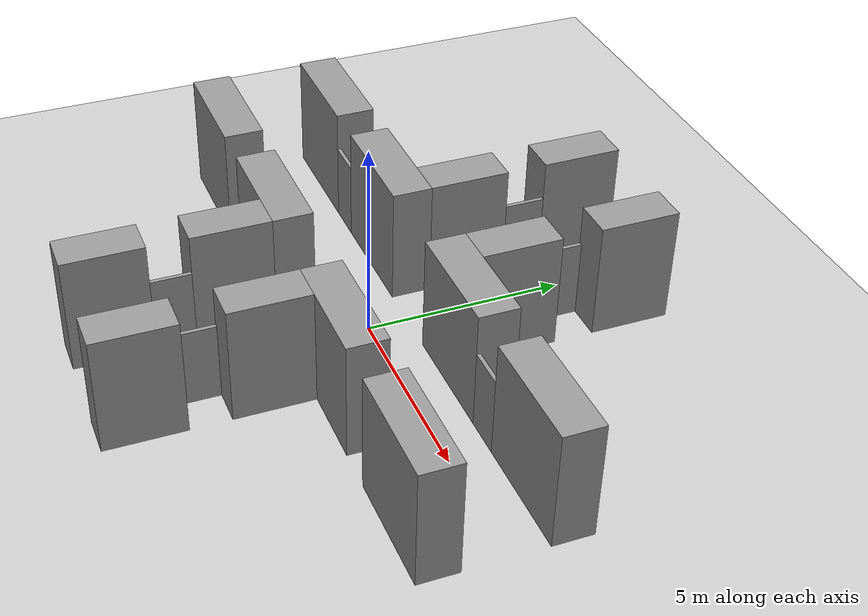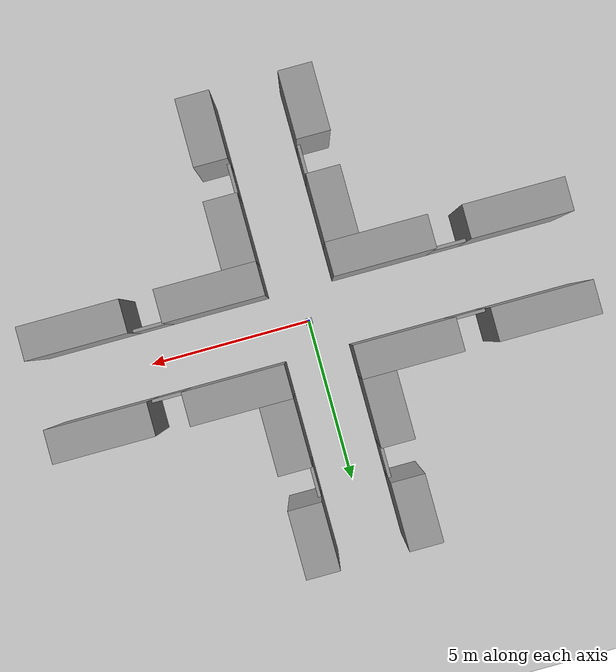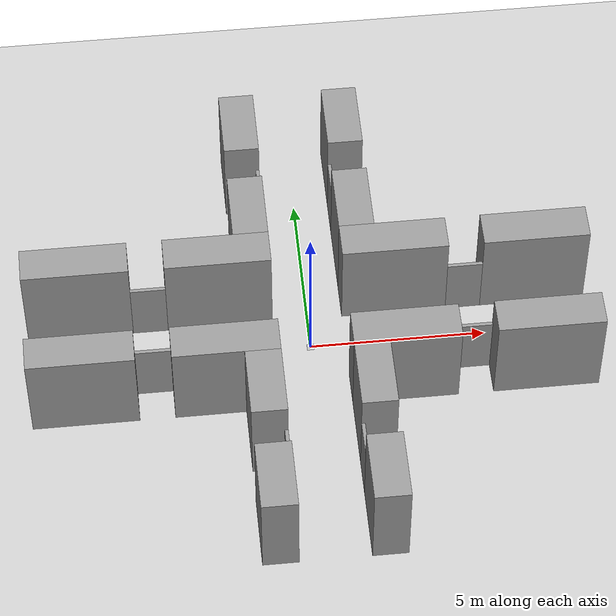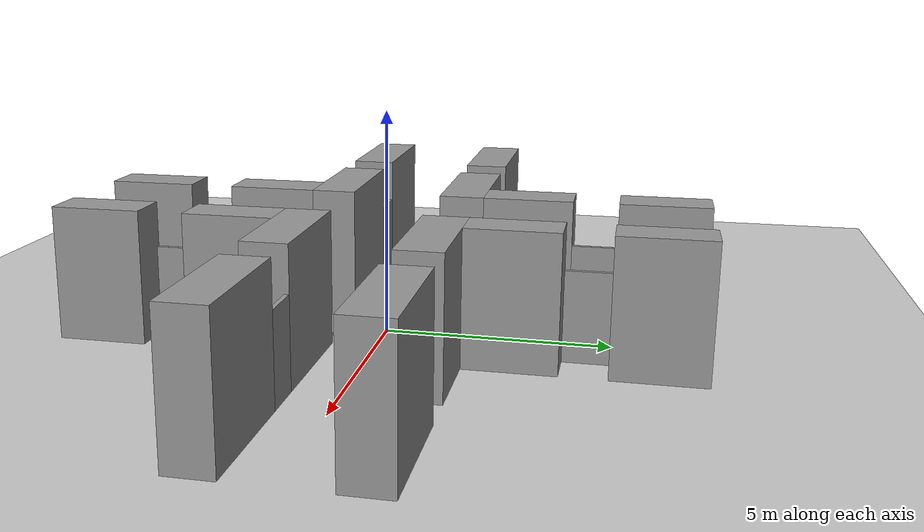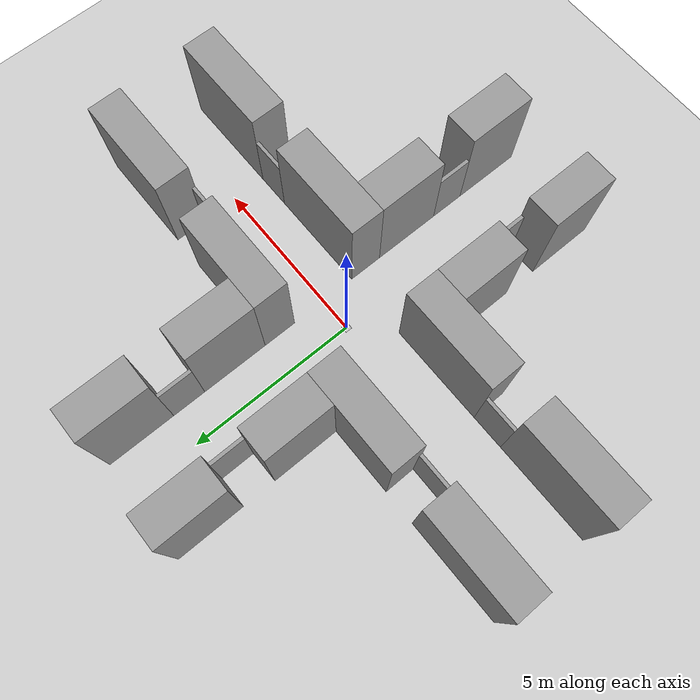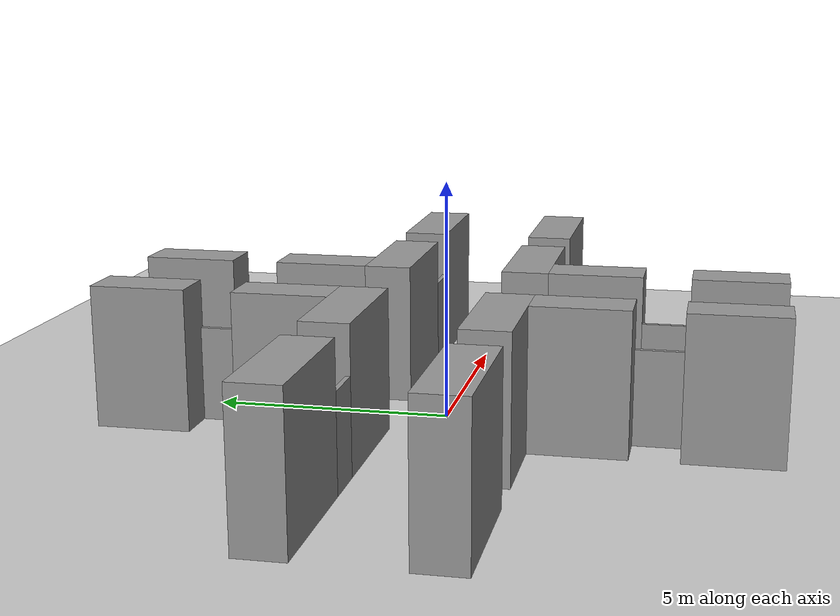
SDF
<sdf version="1.6">
 <world name="default">
  <light name="sun" type="directional">
   <pose>0 0 10 0 -0 0</pose>
   <diffuse>0.8 0.8 0.8 1</diffuse>
   <specular>0.2 0.2 0.2 1</specular>
   <attenuation>
    <range>1000</range>
    <constant>0.9</constant>
    <linear>0.01</linear>
    <quadratic>0.001</quadratic>
   </attenuation>
   <direction>-0.5 0.1 -0.9</direction>
  </light>
  <model name="ground_plane">
   <static>1</static>
   <link name="link">
    <collision name="collision">
     <geometry><plane><normal>0 0 1</normal><size>100 100</size></plane></geometry>
     <surface>
      <contact><collide_bitmask>65535</collide_bitmask></contact>
      <friction><ode><mu>100</mu><mu2>50</mu2></ode></friction>
     </surface>
    </collision>
    <visual name="visual">
     <cast_shadows>0</cast_shadows>
     <geometry><plane><normal>0 0 1</normal><size>100 100</size></plane></geometry>
     <material>
      <script><uri>file://media/materials/scripts/gazebo.material</uri><name>Gazebo/Grey</name></script>
     </material>
    </visual>
   </link>
  </model>
  <gravity>0 0 -9.8</gravity>
  <magnetic_field>6e-06 2.3e-05 -4.2e-05</magnetic_field>
  <atmosphere type="adiabatic"/>
  <physics name="default_physics" default="0" type="ode">
   <max_step_size>0.001</max_step_size>
   <real_time_factor>1</real_time_factor>
   <real_time_update_rate>1000</real_time_update_rate>
  </physics>
  <scene><ambient>0.4 0.4 0.4 1</ambient><background>0.7 0.7 0.7 1</background><shadows>1</shadows></scene>
  <spherical_coordinates>
   <surface_model>EARTH_WGS84</surface_model>
   <latitude_deg>0</latitude_deg>
   <longitude_deg>0</longitude_deg>
   <elevation>0</elevation>
   <heading_deg>0</heading_deg>
  </spherical_coordinates>
  <model name="world_tag">
   <model name="tag">
    <link name="link_0">
     <visual name="visual">
      <geometry><box><size>0.2 0.2 0.0001</size></box></geometry>
      <material>
       <lighting>1</lighting>
       <script>
        <uri>/home/eric/catkin_ws/src/simulation/autolabor_description/world/tag/materials/scripts</uri>
        <uri>/home/eric/catkin_ws/src/simulation/autolabor_description/world/tag/materials/textures</uri>
        <name>tag/one</name>
       </script>
      </material>
     </visual>
    </link>
    <static>1</static>
   </model>
   <model name="world_base">
    <link name="link_0">
     <inertial>
      <mass>3.99997</mass>
      <inertia><ixx>3.33331</ixx><ixy>0</ixy><ixz>0</ixz><iyy>5.99996</iyy><iyz>0</iyz><izz>3.33331</izz></inertia>
     </inertial>
     <pose>2.5 -1.5 0.166667 0 -0 0</pose>
     <visual name="visual">
      <geometry><box><size>3 1 3</size></box></geometry>
      <material>
       <lighting>1</lighting>
       <script><uri>file://media/materials/scripts/gazebo.material</uri><name>Gazebo/Grey</name></script>
       <shader type="pixel"><normal_map>__default__</normal_map></shader>
       <ambient>0.3 0.3 0.3 1</ambient>
       <diffuse>0.7 0.7 0.7 1</diffuse>
       <specular>0.01 0.01 0.01 1</specular>
       <emissive>0 0 0 1</emissive>
      </material>
     </visual>
     <collision name="collision">
      <geometry><box><size>3 1 3</size></box></geometry>
      <surface>
       <friction>
        <ode><mu>1</mu><mu2>1</mu2><fdir1>0 0 0</fdir1><slip1>0</slip1><slip2>0</slip2></ode>
        <torsional>
         <coefficient>1</coefficient>
         <patch_radius>0</patch_radius>
         <surface_radius>0</surface_radius>
         <use_patch_radius>1</use_patch_radius>
         <ode><slip>0</slip></ode>
        </torsional>
       </friction>
       <bounce><restitution_coefficient>0</restitution_coefficient><threshold>1e+06</threshold></bounce>
       <contact>
        <collide_without_contact>0</collide_without_contact>
        <collide_without_contact_bitmask>1</collide_without_contact_bitmask>
        <collide_bitmask>1</collide_bitmask>
        <ode>
         <soft_cfm>0</soft_cfm>
         <soft_erp>0.2</soft_erp>
         <kp>1e+13</kp>
         <kd>1</kd>
         <max_vel>0.01</max_vel>
         <min_depth>0</min_depth>
        </ode>
        <bullet>
         <split_impulse>1</split_impulse>
         <split_impulse_penetration_threshold>-0.01</split_impulse_penetration_threshold>
         <soft_cfm>0</soft_cfm>
         <soft_erp>0.2</soft_erp>
         <kp>1e+13</kp>
         <kd>1</kd>
        </bullet>
       </contact>
      </surface>
     </collision>
    </link>
    <link name="link_0_clone">
     <inertial>
      <mass>0.362376</mass>
      <inertia>
       <ixx>0.12104</ixx>
       <ixy>0</ixy>
       <ixz>0</ixz>
       <iyy>0.15099</iyy>
       <iyz>0</iyz>
       <izz>0.0304459</izz>
      </inertia>
     </inertial>
     <pose>4.5 -1.05 -0.333333 0 -0 0</pose>
     <visual name="visual">
      <geometry><box><size>1 0.1 2</size></box></geometry>
      <material>
       <lighting>1</lighting>
       <script><uri>file://media/materials/scripts/gazebo.material</uri><name>Gazebo/Grey</name></script>
       <shader type="pixel"><normal_map>__default__</normal_map></shader>
       <ambient>0.3 0.3 0.3 1</ambient>
       <diffuse>0.7 0.7 0.7 1</diffuse>
       <specular>0.01 0.01 0.01 1</specular>
       <emissive>0 0 0 1</emissive>
      </material>
     </visual>
     <collision name="collision">
      <geometry><box><size>1 0.1 2</size></box></geometry>
      <surface>
       <friction>
        <ode><mu>1</mu><mu2>1</mu2><fdir1>0 0 0</fdir1><slip1>0</slip1><slip2>0</slip2></ode>
        <torsional>
         <coefficient>1</coefficient>
         <patch_radius>0</patch_radius>
         <surface_radius>0</surface_radius>
         <use_patch_radius>1</use_patch_radius>
         <ode><slip>0</slip></ode>
        </torsional>
       </friction>
       <bounce><restitution_coefficient>0</restitution_coefficient><threshold>1e+06</threshold></bounce>
       <contact>
        <collide_without_contact>0</collide_without_contact>
        <collide_without_contact_bitmask>1</collide_without_contact_bitmask>
        <collide_bitmask>1</collide_bitmask>
        <ode>
         <soft_cfm>0</soft_cfm>
         <soft_erp>0.2</soft_erp>
         <kp>1e+13</kp>
         <kd>1</kd>
         <max_vel>0.01</max_vel>
         <min_depth>0</min_depth>
        </ode>
        <bullet>
         <split_impulse>1</split_impulse>
         <split_impulse_penetration_threshold>-0.01</split_impulse_penetration_threshold>
         <soft_cfm>0</soft_cfm>
         <soft_erp>0.2</soft_erp>
         <kp>1e+13</kp>
         <kd>1</kd>
        </bullet>
       </contact>
      </surface>
     </collision>
    </link>
    <link name="link_0_clone_0">
     <inertial>
      <mass>4.00002</mass>
      <inertia><ixx>3.33335</ixx><ixy>0</ixy><ixz>0</ixz><iyy>6.00003</iyy><iyz>0</iyz><izz>3.33335</izz></inertia>
     </inertial>
     <pose>6.5 -1.5 0.166667 0 -0 0</pose>
     <visual name="visual">
      <geometry><box><size>3 1 3</size></box></geometry>
      <material>
       <lighting>1</lighting>
       <script><uri>file://media/materials/scripts/gazebo.material</uri><name>Gazebo/Grey</name></script>
       <shader type="pixel"><normal_map>__default__</normal_map></shader>
       <ambient>0.3 0.3 0.3 1</ambient>
       <diffuse>0.7 0.7 0.7 1</diffuse>
       <specular>0.01 0.01 0.01 1</specular>
       <emissive>0 0 0 1</emissive>
      </material>
     </visual>
     <collision name="collision">
      <geometry><box><size>3 1 3</size></box></geometry>
      <surface>
       <friction>
        <ode><mu>1</mu><mu2>1</mu2><fdir1>0 0 0</fdir1><slip1>0</slip1><slip2>0</slip2></ode>
        <torsional>
         <coefficient>1</coefficient>
         <patch_radius>0</patch_radius>
         <surface_radius>0</surface_radius>
         <use_patch_radius>1</use_patch_radius>
         <ode><slip>0</slip></ode>
        </torsional>
       </friction>
       <bounce><restitution_coefficient>0</restitution_coefficient><threshold>1e+06</threshold></bounce>
       <contact>
        <collide_without_contact>0</collide_without_contact>
        <collide_without_contact_bitmask>1</collide_without_contact_bitmask>
        <collide_bitmask>1</collide_bitmask>
        <ode>
         <soft_cfm>0</soft_cfm>
         <soft_erp>0.2</soft_erp>
         <kp>1e+13</kp>
         <kd>1</kd>
         <max_vel>0.01</max_vel>
         <min_depth>0</min_depth>
        </ode>
        <bullet>
         <split_impulse>1</split_impulse>
         <split_impulse_penetration_threshold>-0.01</split_impulse_penetration_threshold>
         <soft_cfm>0</soft_cfm>
         <soft_erp>0.2</soft_erp>
         <kp>1e+13</kp>
         <kd>1</kd>
        </bullet>
       </contact>
      </surface>
     </collision>
    </link>
    <link name="link_0_clone_1">
     <inertial>
      <mass>2.66656</mass>
      <inertia><ixx>2.22214</ixx><ixy>0</ixy><ixz>0</ixz><iyy>2.88877</iyy><iyz>0</iyz><izz>1.11107</izz></inertia>
     </inertial>
     <pose>1.5 -3 0.166667 0 -0 1.5708</pose>
     <visual name="visual">
      <geometry><box><size>2 1 3</size></box></geometry>
      <material>
       <lighting>1</lighting>
       <script><uri>file://media/materials/scripts/gazebo.material</uri><name>Gazebo/Grey</name></script>
       <shader type="pixel"><normal_map>__default__</normal_map></shader>
       <ambient>0.3 0.3 0.3 1</ambient>
       <diffuse>0.7 0.7 0.7 1</diffuse>
       <specular>0.01 0.01 0.01 1</specular>
       <emissive>0 0 0 1</emissive>
      </material>
     </visual>
     <collision name="collision">
      <geometry><box><size>2 1 3</size></box></geometry>
      <surface>
       <friction>
        <ode><mu>1</mu><mu2>1</mu2><fdir1>0 0 0</fdir1><slip1>0</slip1><slip2>0</slip2></ode>
        <torsional>
         <coefficient>1</coefficient>
         <patch_radius>0</patch_radius>
         <surface_radius>0</surface_radius>
         <use_patch_radius>1</use_patch_radius>
         <ode><slip>0</slip></ode>
        </torsional>
       </friction>
       <bounce><restitution_coefficient>0</restitution_coefficient><threshold>1e+06</threshold></bounce>
       <contact>
        <collide_without_contact>0</collide_without_contact>
        <collide_without_contact_bitmask>1</collide_without_contact_bitmask>
        <collide_bitmask>1</collide_bitmask>
        <ode>
         <soft_cfm>0</soft_cfm>
         <soft_erp>0.2</soft_erp>
         <kp>1e+13</kp>
         <kd>1</kd>
         <max_vel>0.01</max_vel>
         <min_depth>0</min_depth>
        </ode>
        <bullet>
         <split_impulse>1</split_impulse>
         <split_impulse_penetration_threshold>-0.01</split_impulse_penetration_threshold>
         <soft_cfm>0</soft_cfm>
         <soft_erp>0.2</soft_erp>
         <kp>1e+13</kp>
         <kd>1</kd>
        </bullet>
       </contact>
      </surface>
     </collision>
    </link>
    <link name="link_0_clone_1_clone">
     <inertial>
      <mass>2.66656</mass>
      <inertia><ixx>2.22214</ixx><ixy>0</ixy><ixz>0</ixz><iyy>2.88877</iyy><iyz>0</iyz><izz>1.11107</izz></inertia>
     </inertial>
     <pose>1.5 -6 0.166667 0 -0 1.5708</pose>
     <visual name="visual">
      <geometry><box><size>2 1 3</size></box></geometry>
      <material>
       <lighting>1</lighting>
       <script><uri>file://media/materials/scripts/gazebo.material</uri><name>Gazebo/Grey</name></script>
       <shader type="pixel"><normal_map>__default__</normal_map></shader>
       <ambient>0.3 0.3 0.3 1</ambient>
       <diffuse>0.7 0.7 0.7 1</diffuse>
       <specular>0.01 0.01 0.01 1</specular>
       <emissive>0 0 0 1</emissive>
      </material>
     </visual>
     <collision name="collision">
      <geometry><box><size>2 1 3</size></box></geometry>
      <surface>
       <friction>
        <ode><mu>1</mu><mu2>1</mu2><fdir1>0 0 0</fdir1><slip1>0</slip1><slip2>0</slip2></ode>
        <torsional>
         <coefficient>1</coefficient>
         <patch_radius>0</patch_radius>
         <surface_radius>0</surface_radius>
         <use_patch_radius>1</use_patch_radius>
         <ode><slip>0</slip></ode>
        </torsional>
       </friction>
       <bounce><restitution_coefficient>0</restitution_coefficient><threshold>1e+06</threshold></bounce>
       <contact>
        <collide_without_contact>0</collide_without_contact>
        <collide_without_contact_bitmask>1</collide_without_contact_bitmask>
        <collide_bitmask>1</collide_bitmask>
        <ode>
         <soft_cfm>0</soft_cfm>
         <soft_erp>0.2</soft_erp>
         <kp>1e+13</kp>
         <kd>1</kd>
         <max_vel>0.01</max_vel>
         <min_depth>0</min_depth>
        </ode>
        <bullet>
         <split_impulse>1</split_impulse>
         <split_impulse_penetration_threshold>-0.01</split_impulse_penetration_threshold>
         <soft_cfm>0</soft_cfm>
         <soft_erp>0.2</soft_erp>
         <kp>1e+13</kp>
         <kd>1</kd>
        </bullet>
       </contact>
      </surface>
     </collision>
    </link>
    <link name="link_0_clone_1_clone_0">
     <inertial>
      <mass>2.66656</mass>
      <inertia><ixx>2.22214</ixx><ixy>0</ixy><ixz>0</ixz><iyy>2.88877</iyy><iyz>0</iyz><izz>1.11107</izz></inertia>
     </inertial>
     <pose>1.5 3 0.166667 0 -0 1.5708</pose>
     <visual name="visual">
      <geometry><box><size>2 1 3</size></box></geometry>
      <material>
       <lighting>1</lighting>
       <script><uri>file://media/materials/scripts/gazebo.material</uri><name>Gazebo/Grey</name></script>
       <shader type="pixel"><normal_map>__default__</normal_map></shader>
       <ambient>0.3 0.3 0.3 1</ambient>
       <diffuse>0.7 0.7 0.7 1</diffuse>
       <specular>0.01 0.01 0.01 1</specular>
       <emissive>0 0 0 1</emissive>
      </material>
     </visual>
     <collision name="collision">
      <geometry><box><size>2 1 3</size></box></geometry>
      <surface>
       <friction>
        <ode><mu>1</mu><mu2>1</mu2><fdir1>0 0 0</fdir1><slip1>0</slip1><slip2>0</slip2></ode>
        <torsional>
         <coefficient>1</coefficient>
         <patch_radius>0</patch_radius>
         <surface_radius>0</surface_radius>
         <use_patch_radius>1</use_patch_radius>
         <ode><slip>0</slip></ode>
        </torsional>
       </friction>
       <bounce><restitution_coefficient>0</restitution_coefficient><threshold>1e+06</threshold></bounce>
       <contact>
        <collide_without_contact>0</collide_without_contact>
        <collide_without_contact_bitmask>1</collide_without_contact_bitmask>
        <collide_bitmask>1</collide_bitmask>
        <ode>
         <soft_cfm>0</soft_cfm>
         <soft_erp>0.2</soft_erp>
         <kp>1e+13</kp>
         <kd>1</kd>
         <max_vel>0.01</max_vel>
         <min_depth>0</min_depth>
        </ode>
        <bullet>
         <split_impulse>1</split_impulse>
         <split_impulse_penetration_threshold>-0.01</split_impulse_penetration_threshold>
         <soft_cfm>0</soft_cfm>
         <soft_erp>0.2</soft_erp>
         <kp>1e+13</kp>
         <kd>1</kd>
        </bullet>
       </contact>
      </surface>
     </collision>
    </link>
    <link name="link_0_clone_1_clone_1">
     <inertial>
      <mass>2.66656</mass>
      <inertia><ixx>2.22214</ixx><ixy>0</ixy><ixz>0</ixz><iyy>2.88877</iyy><iyz>0</iyz><izz>1.11107</izz></inertia>
     </inertial>
     <pose>1.5 6.00001 0.166667 0 -0 1.5708</pose>
     <visual name="visual">
      <geometry><box><size>2 1 3</size></box></geometry>
      <material>
       <lighting>1</lighting>
       <script><uri>file://media/materials/scripts/gazebo.material</uri><name>Gazebo/Grey</name></script>
       <shader type="pixel"><normal_map>__default__</normal_map></shader>
       <ambient>0.3 0.3 0.3 1</ambient>
       <diffuse>0.7 0.7 0.7 1</diffuse>
       <specular>0.01 0.01 0.01 1</specular>
       <emissive>0 0 0 1</emissive>
      </material>
     </visual>
     <collision name="collision">
      <geometry><box><size>2 1 3</size></box></geometry>
      <surface>
       <friction>
        <ode><mu>1</mu><mu2>1</mu2><fdir1>0 0 0</fdir1><slip1>0</slip1><slip2>0</slip2></ode>
        <torsional>
         <coefficient>1</coefficient>
         <patch_radius>0</patch_radius>
         <surface_radius>0</surface_radius>
         <use_patch_radius>1</use_patch_radius>
         <ode><slip>0</slip></ode>
        </torsional>
       </friction>
       <bounce><restitution_coefficient>0</restitution_coefficient><threshold>1e+06</threshold></bounce>
       <contact>
        <collide_without_contact>0</collide_without_contact>
        <collide_without_contact_bitmask>1</collide_without_contact_bitmask>
        <collide_bitmask>1</collide_bitmask>
        <ode>
         <soft_cfm>0</soft_cfm>
         <soft_erp>0.2</soft_erp>
         <kp>1e+13</kp>
         <kd>1</kd>
         <max_vel>0.01</max_vel>
         <min_depth>0</min_depth>
        </ode>
        <bullet>
         <split_impulse>1</split_impulse>
         <split_impulse_penetration_threshold>-0.01</split_impulse_penetration_threshold>
         <soft_cfm>0</soft_cfm>
         <soft_erp>0.2</soft_erp>
         <kp>1e+13</kp>
         <kd>1</kd>
        </bullet>
       </contact>
      </surface>
     </collision>
    </link>
    <link name="link_0_clone_1_clone_2">
     <inertial>
      <mass>2.66656</mass>
      <inertia><ixx>2.22214</ixx><ixy>0</ixy><ixz>0</ixz><iyy>2.88877</iyy><iyz>0</iyz><izz>1.11107</izz></inertia>
     </inertial>
     <pose>-1.5 -3 0.166667 0 -0 1.5708</pose>
     <visual name="visual">
      <geometry><box><size>2 1 3</size></box></geometry>
      <material>
       <lighting>1</lighting>
       <script><uri>file://media/materials/scripts/gazebo.material</uri><name>Gazebo/Grey</name></script>
       <shader type="pixel"><normal_map>__default__</normal_map></shader>
       <ambient>0.3 0.3 0.3 1</ambient>
       <diffuse>0.7 0.7 0.7 1</diffuse>
       <specular>0.01 0.01 0.01 1</specular>
       <emissive>0 0 0 1</emissive>
      </material>
     </visual>
     <collision name="collision">
      <geometry><box><size>2 1 3</size></box></geometry>
      <surface>
       <friction>
        <ode><mu>1</mu><mu2>1</mu2><fdir1>0 0 0</fdir1><slip1>0</slip1><slip2>0</slip2></ode>
        <torsional>
         <coefficient>1</coefficient>
         <patch_radius>0</patch_radius>
         <surface_radius>0</surface_radius>
         <use_patch_radius>1</use_patch_radius>
         <ode><slip>0</slip></ode>
        </torsional>
       </friction>
       <bounce><restitution_coefficient>0</restitution_coefficient><threshold>1e+06</threshold></bounce>
       <contact>
        <collide_without_contact>0</collide_without_contact>
        <collide_without_contact_bitmask>1</collide_without_contact_bitmask>
        <collide_bitmask>1</collide_bitmask>
        <ode>
         <soft_cfm>0</soft_cfm>
         <soft_erp>0.2</soft_erp>
         <kp>1e+13</kp>
         <kd>1</kd>
         <max_vel>0.01</max_vel>
         <min_depth>0</min_depth>
        </ode>
        <bullet>
         <split_impulse>1</split_impulse>
         <split_impulse_penetration_threshold>-0.01</split_impulse_penetration_threshold>
         <soft_cfm>0</soft_cfm>
         <soft_erp>0.2</soft_erp>
         <kp>1e+13</kp>
         <kd>1</kd>
        </bullet>
       </contact>
      </surface>
     </collision>
    </link>
    <link name="link_0_clone_1_clone_3">
     <inertial>
      <mass>2.66656</mass>
      <inertia><ixx>2.22214</ixx><ixy>0</ixy><ixz>0</ixz><iyy>2.88877</iyy><iyz>0</iyz><izz>1.11107</izz></inertia>
     </inertial>
     <pose>-1.50001 -6.00001 0.166667 0 -0 1.5708</pose>
     <visual name="visual">
      <geometry><box><size>2 1 3</size></box></geometry>
      <material>
       <lighting>1</lighting>
       <script><uri>file://media/materials/scripts/gazebo.material</uri><name>Gazebo/Grey</name></script>
       <shader type="pixel"><normal_map>__default__</normal_map></shader>
       <ambient>0.3 0.3 0.3 1</ambient>
       <diffuse>0.7 0.7 0.7 1</diffuse>
       <specular>0.01 0.01 0.01 1</specular>
       <emissive>0 0 0 1</emissive>
      </material>
     </visual>
     <collision name="collision">
      <geometry><box><size>2 1 3</size></box></geometry>
      <surface>
       <friction>
        <ode><mu>1</mu><mu2>1</mu2><fdir1>0 0 0</fdir1><slip1>0</slip1><slip2>0</slip2></ode>
        <torsional>
         <coefficient>1</coefficient>
         <patch_radius>0</patch_radius>
         <surface_radius>0</surface_radius>
         <use_patch_radius>1</use_patch_radius>
         <ode><slip>0</slip></ode>
        </torsional>
       </friction>
       <bounce><restitution_coefficient>0</restitution_coefficient><threshold>1e+06</threshold></bounce>
       <contact>
        <collide_without_contact>0</collide_without_contact>
        <collide_without_contact_bitmask>1</collide_without_contact_bitmask>
        <collide_bitmask>1</collide_bitmask>
        <ode>
         <soft_cfm>0</soft_cfm>
         <soft_erp>0.2</soft_erp>
         <kp>1e+13</kp>
         <kd>1</kd>
         <max_vel>0.01</max_vel>
         <min_depth>0</min_depth>
        </ode>
        <bullet>
         <split_impulse>1</split_impulse>
         <split_impulse_penetration_threshold>-0.01</split_impulse_penetration_threshold>
         <soft_cfm>0</soft_cfm>
         <soft_erp>0.2</soft_erp>
         <kp>1e+13</kp>
         <kd>1</kd>
        </bullet>
       </contact>
      </surface>
     </collision>
    </link>
    <link name="link_0_clone_1_clone_4">
     <inertial>
      <mass>2.66656</mass>
      <inertia><ixx>2.22214</ixx><ixy>0</ixy><ixz>0</ixz><iyy>2.88877</iyy><iyz>0</iyz><izz>1.11107</izz></inertia>
     </inertial>
     <pose>-1.5 3 0.166667 0 -0 1.5708</pose>
     <visual name="visual">
      <geometry><box><size>2 1 3</size></box></geometry>
      <material>
       <lighting>1</lighting>
       <script><uri>file://media/materials/scripts/gazebo.material</uri><name>Gazebo/Grey</name></script>
       <shader type="pixel"><normal_map>__default__</normal_map></shader>
       <ambient>0.3 0.3 0.3 1</ambient>
       <diffuse>0.7 0.7 0.7 1</diffuse>
       <specular>0.01 0.01 0.01 1</specular>
       <emissive>0 0 0 1</emissive>
      </material>
     </visual>
     <collision name="collision">
      <geometry><box><size>2 1 3</size></box></geometry>
      <surface>
       <friction>
        <ode><mu>1</mu><mu2>1</mu2><fdir1>0 0 0</fdir1><slip1>0</slip1><slip2>0</slip2></ode>
        <torsional>
         <coefficient>1</coefficient>
         <patch_radius>0</patch_radius>
         <surface_radius>0</surface_radius>
         <use_patch_radius>1</use_patch_radius>
         <ode><slip>0</slip></ode>
        </torsional>
       </friction>
       <bounce><restitution_coefficient>0</restitution_coefficient><threshold>1e+06</threshold></bounce>
       <contact>
        <collide_without_contact>0</collide_without_contact>
        <collide_without_contact_bitmask>1</collide_without_contact_bitmask>
        <collide_bitmask>1</collide_bitmask>
        <ode>
         <soft_cfm>0</soft_cfm>
         <soft_erp>0.2</soft_erp>
         <kp>1e+13</kp>
         <kd>1</kd>
         <max_vel>0.01</max_vel>
         <min_depth>0</min_depth>
        </ode>
        <bullet>
         <split_impulse>1</split_impulse>
         <split_impulse_penetration_threshold>-0.01</split_impulse_penetration_threshold>
         <soft_cfm>0</soft_cfm>
         <soft_erp>0.2</soft_erp>
         <kp>1e+13</kp>
         <kd>1</kd>
        </bullet>
       </contact>
      </surface>
     </collision>
    </link>
    <link name="link_0_clone_1_clone_5">
     <inertial>
      <mass>2.66656</mass>
      <inertia><ixx>2.22214</ixx><ixy>0</ixy><ixz>0</ixz><iyy>2.88877</iyy><iyz>0</iyz><izz>1.11107</izz></inertia>
     </inertial>
     <pose>-1.5 6 0.166667 0 -0 1.5708</pose>
     <visual name="visual">
      <geometry><box><size>2 1 3</size></box></geometry>
      <material>
       <lighting>1</lighting>
       <script><uri>file://media/materials/scripts/gazebo.material</uri><name>Gazebo/Grey</name></script>
       <shader type="pixel"><normal_map>__default__</normal_map></shader>
       <ambient>0.3 0.3 0.3 1</ambient>
       <diffuse>0.7 0.7 0.7 1</diffuse>
       <specular>0.01 0.01 0.01 1</specular>
       <emissive>0 0 0 1</emissive>
      </material>
     </visual>
     <collision name="collision">
      <geometry><box><size>2 1 3</size></box></geometry>
      <surface>
       <friction>
        <ode><mu>1</mu><mu2>1</mu2><fdir1>0 0 0</fdir1><slip1>0</slip1><slip2>0</slip2></ode>
        <torsional>
         <coefficient>1</coefficient>
         <patch_radius>0</patch_radius>
         <surface_radius>0</surface_radius>
         <use_patch_radius>1</use_patch_radius>
         <ode><slip>0</slip></ode>
        </torsional>
       </friction>
       <bounce><restitution_coefficient>0</restitution_coefficient><threshold>1e+06</threshold></bounce>
       <contact>
        <collide_without_contact>0</collide_without_contact>
        <collide_without_contact_bitmask>1</collide_without_contact_bitmask>
        <collide_bitmask>1</collide_bitmask>
        <ode>
         <soft_cfm>0</soft_cfm>
         <soft_erp>0.2</soft_erp>
         <kp>1e+13</kp>
         <kd>1</kd>
         <max_vel>0.01</max_vel>
         <min_depth>0</min_depth>
        </ode>
        <bullet>
         <split_impulse>1</split_impulse>
         <split_impulse_penetration_threshold>-0.01</split_impulse_penetration_threshold>
         <soft_cfm>0</soft_cfm>
         <soft_erp>0.2</soft_erp>
         <kp>1e+13</kp>
         <kd>1</kd>
        </bullet>
       </contact>
      </surface>
     </collision>
    </link>
    <link name="link_0_clone_2">
     <inertial>
      <mass>3.99997</mass>
      <inertia><ixx>3.33331</ixx><ixy>0</ixy><ixz>0</ixz><iyy>5.99996</iyy><iyz>0</iyz><izz>3.33331</izz></inertia>
     </inertial>
     <pose>2.5 1.5 0.166667 0 -0 0</pose>
     <visual name="visual">
      <geometry><box><size>3 1 3</size></box></geometry>
      <material>
       <lighting>1</lighting>
       <script><uri>file://media/materials/scripts/gazebo.material</uri><name>Gazebo/Grey</name></script>
       <shader type="pixel"><normal_map>__default__</normal_map></shader>
       <ambient>0.3 0.3 0.3 1</ambient>
       <diffuse>0.7 0.7 0.7 1</diffuse>
       <specular>0.01 0.01 0.01 1</specular>
       <emissive>0 0 0 1</emissive>
      </material>
     </visual>
     <collision name="collision">
      <geometry><box><size>3 1 3</size></box></geometry>
      <surface>
       <friction>
        <ode><mu>1</mu><mu2>1</mu2><fdir1>0 0 0</fdir1><slip1>0</slip1><slip2>0</slip2></ode>
        <torsional>
         <coefficient>1</coefficient>
         <patch_radius>0</patch_radius>
         <surface_radius>0</surface_radius>
         <use_patch_radius>1</use_patch_radius>
         <ode><slip>0</slip></ode>
        </torsional>
       </friction>
       <bounce><restitution_coefficient>0</restitution_coefficient><threshold>1e+06</threshold></bounce>
       <contact>
        <collide_without_contact>0</collide_without_contact>
        <collide_without_contact_bitmask>1</collide_without_contact_bitmask>
        <collide_bitmask>1</collide_bitmask>
        <ode>
         <soft_cfm>0</soft_cfm>
         <soft_erp>0.2</soft_erp>
         <kp>1e+13</kp>
         <kd>1</kd>
         <max_vel>0.01</max_vel>
         <min_depth>0</min_depth>
        </ode>
        <bullet>
         <split_impulse>1</split_impulse>
         <split_impulse_penetration_threshold>-0.01</split_impulse_penetration_threshold>
         <soft_cfm>0</soft_cfm>
         <soft_erp>0.2</soft_erp>
         <kp>1e+13</kp>
         <kd>1</kd>
        </bullet>
       </contact>
      </surface>
     </collision>
    </link>
    <link name="link_0_clone_3">
     <inertial>
      <mass>3.99997</mass>
      <inertia><ixx>3.33331</ixx><ixy>0</ixy><ixz>0</ixz><iyy>5.99996</iyy><iyz>0</iyz><izz>3.33331</izz></inertia>
     </inertial>
     <pose>6.5 1.5 0.166667 0 -0 0</pose>
     <visual name="visual">
      <geometry><box><size>3 1 3</size></box></geometry>
      <material>
       <lighting>1</lighting>
       <script><uri>file://media/materials/scripts/gazebo.material</uri><name>Gazebo/Grey</name></script>
       <shader type="pixel"><normal_map>__default__</normal_map></shader>
       <ambient>0.3 0.3 0.3 1</ambient>
       <diffuse>0.7 0.7 0.7 1</diffuse>
       <specular>0.01 0.01 0.01 1</specular>
       <emissive>0 0 0 1</emissive>
      </material>
     </visual>
     <collision name="collision">
      <geometry><box><size>3 1 3</size></box></geometry>
      <surface>
       <friction>
        <ode><mu>1</mu><mu2>1</mu2><fdir1>0 0 0</fdir1><slip1>0</slip1><slip2>0</slip2></ode>
        <torsional>
         <coefficient>1</coefficient>
         <patch_radius>0</patch_radius>
         <surface_radius>0</surface_radius>
         <use_patch_radius>1</use_patch_radius>
         <ode><slip>0</slip></ode>
        </torsional>
       </friction>
       <bounce><restitution_coefficient>0</restitution_coefficient><threshold>1e+06</threshold></bounce>
       <contact>
        <collide_without_contact>0</collide_without_contact>
        <collide_without_contact_bitmask>1</collide_without_contact_bitmask>
        <collide_bitmask>1</collide_bitmask>
        <ode>
         <soft_cfm>0</soft_cfm>
         <soft_erp>0.2</soft_erp>
         <kp>1e+13</kp>
         <kd>1</kd>
         <max_vel>0.01</max_vel>
         <min_depth>0</min_depth>
        </ode>
        <bullet>
         <split_impulse>1</split_impulse>
         <split_impulse_penetration_threshold>-0.01</split_impulse_penetration_threshold>
         <soft_cfm>0</soft_cfm>
         <soft_erp>0.2</soft_erp>
         <kp>1e+13</kp>
         <kd>1</kd>
        </bullet>
       </contact>
      </surface>
     </collision>
    </link>
    <link name="link_0_clone_4">
     <inertial>
      <mass>3.99997</mass>
      <inertia><ixx>3.33331</ixx><ixy>0</ixy><ixz>0</ixz><iyy>5.99996</iyy><iyz>0</iyz><izz>3.33331</izz></inertia>
     </inertial>
     <pose>-2.5 -1.5 0.166667 0 -0 0</pose>
     <visual name="visual">
      <geometry><box><size>3 1 3</size></box></geometry>
      <material>
       <lighting>1</lighting>
       <script><uri>file://media/materials/scripts/gazebo.material</uri><name>Gazebo/Grey</name></script>
       <shader type="pixel"><normal_map>__default__</normal_map></shader>
       <ambient>0.3 0.3 0.3 1</ambient>
       <diffuse>0.7 0.7 0.7 1</diffuse>
       <specular>0.01 0.01 0.01 1</specular>
       <emissive>0 0 0 1</emissive>
      </material>
     </visual>
     <collision name="collision">
      <geometry><box><size>3 1 3</size></box></geometry>
      <surface>
       <friction>
        <ode><mu>1</mu><mu2>1</mu2><fdir1>0 0 0</fdir1><slip1>0</slip1><slip2>0</slip2></ode>
        <torsional>
         <coefficient>1</coefficient>
         <patch_radius>0</patch_radius>
         <surface_radius>0</surface_radius>
         <use_patch_radius>1</use_patch_radius>
         <ode><slip>0</slip></ode>
        </torsional>
       </friction>
       <bounce><restitution_coefficient>0</restitution_coefficient><threshold>1e+06</threshold></bounce>
       <contact>
        <collide_without_contact>0</collide_without_contact>
        <collide_without_contact_bitmask>1</collide_without_contact_bitmask>
        <collide_bitmask>1</collide_bitmask>
        <ode>
         <soft_cfm>0</soft_cfm>
         <soft_erp>0.2</soft_erp>
         <kp>1e+13</kp>
         <kd>1</kd>
         <max_vel>0.01</max_vel>
         <min_depth>0</min_depth>
        </ode>
        <bullet>
         <split_impulse>1</split_impulse>
         <split_impulse_penetration_threshold>-0.01</split_impulse_penetration_threshold>
         <soft_cfm>0</soft_cfm>
         <soft_erp>0.2</soft_erp>
         <kp>1e+13</kp>
         <kd>1</kd>
        </bullet>
       </contact>
      </surface>
     </collision>
    </link>
    <link name="link_0_clone_5">
     <inertial>
      <mass>3.99997</mass>
      <inertia><ixx>3.33331</ixx><ixy>0</ixy><ixz>0</ixz><iyy>5.99996</iyy><iyz>0</iyz><izz>3.33331</izz></inertia>
     </inertial>
     <pose>-2.5 1.5 0.166667 0 -0 0</pose>
     <visual name="visual">
      <geometry><box><size>3 1 3</size></box></geometry>
      <material>
       <lighting>1</lighting>
       <script><uri>file://media/materials/scripts/gazebo.material</uri><name>Gazebo/Grey</name></script>
       <shader type="pixel"><normal_map>__default__</normal_map></shader>
       <ambient>0.3 0.3 0.3 1</ambient>
       <diffuse>0.7 0.7 0.7 1</diffuse>
       <specular>0.01 0.01 0.01 1</specular>
       <emissive>0 0 0 1</emissive>
      </material>
     </visual>
     <collision name="collision">
      <geometry><box><size>3 1 3</size></box></geometry>
      <surface>
       <friction>
        <ode><mu>1</mu><mu2>1</mu2><fdir1>0 0 0</fdir1><slip1>0</slip1><slip2>0</slip2></ode>
        <torsional>
         <coefficient>1</coefficient>
         <patch_radius>0</patch_radius>
         <surface_radius>0</surface_radius>
         <use_patch_radius>1</use_patch_radius>
         <ode><slip>0</slip></ode>
        </torsional>
       </friction>
       <bounce><restitution_coefficient>0</restitution_coefficient><threshold>1e+06</threshold></bounce>
       <contact>
        <collide_without_contact>0</collide_without_contact>
        <collide_without_contact_bitmask>1</collide_without_contact_bitmask>
        <collide_bitmask>1</collide_bitmask>
        <ode>
         <soft_cfm>0</soft_cfm>
         <soft_erp>0.2</soft_erp>
         <kp>1e+13</kp>
         <kd>1</kd>
         <max_vel>0.01</max_vel>
         <min_depth>0</min_depth>
        </ode>
        <bullet>
         <split_impulse>1</split_impulse>
         <split_impulse_penetration_threshold>-0.01</split_impulse_penetration_threshold>
         <soft_cfm>0</soft_cfm>
         <soft_erp>0.2</soft_erp>
         <kp>1e+13</kp>
         <kd>1</kd>
        </bullet>
       </contact>
      </surface>
     </collision>
    </link>
    <link name="link_0_clone_6">
     <inertial>
      <mass>3.99997</mass>
      <inertia><ixx>3.33331</ixx><ixy>0</ixy><ixz>0</ixz><iyy>5.99996</iyy><iyz>0</iyz><izz>3.33331</izz></inertia>
     </inertial>
     <pose>-6.5 1.5 0.166667 0 -0 0</pose>
     <visual name="visual">
      <geometry><box><size>3 1 3</size></box></geometry>
      <material>
       <lighting>1</lighting>
       <script><uri>file://media/materials/scripts/gazebo.material</uri><name>Gazebo/Grey</name></script>
       <shader type="pixel"><normal_map>__default__</normal_map></shader>
       <ambient>0.3 0.3 0.3 1</ambient>
       <diffuse>0.7 0.7 0.7 1</diffuse>
       <specular>0.01 0.01 0.01 1</specular>
       <emissive>0 0 0 1</emissive>
      </material>
     </visual>
     <collision name="collision">
      <geometry><box><size>3 1 3</size></box></geometry>
      <surface>
       <friction>
        <ode><mu>1</mu><mu2>1</mu2><fdir1>0 0 0</fdir1><slip1>0</slip1><slip2>0</slip2></ode>
        <torsional>
         <coefficient>1</coefficient>
         <patch_radius>0</patch_radius>
         <surface_radius>0</surface_radius>
         <use_patch_radius>1</use_patch_radius>
         <ode><slip>0</slip></ode>
        </torsional>
       </friction>
       <bounce><restitution_coefficient>0</restitution_coefficient><threshold>1e+06</threshold></bounce>
       <contact>
        <collide_without_contact>0</collide_without_contact>
        <collide_without_contact_bitmask>1</collide_without_contact_bitmask>
        <collide_bitmask>1</collide_bitmask>
        <ode>
         <soft_cfm>0</soft_cfm>
         <soft_erp>0.2</soft_erp>
         <kp>1e+13</kp>
         <kd>1</kd>
         <max_vel>0.01</max_vel>
         <min_depth>0</min_depth>
        </ode>
        <bullet>
         <split_impulse>1</split_impulse>
         <split_impulse_penetration_threshold>-0.01</split_impulse_penetration_threshold>
         <soft_cfm>0</soft_cfm>
         <soft_erp>0.2</soft_erp>
         <kp>1e+13</kp>
         <kd>1</kd>
        </bullet>
       </contact>
      </surface>
     </collision>
    </link>
    <link name="link_0_clone_7">
     <inertial>
      <mass>3.99997</mass>
      <inertia><ixx>3.33331</ixx><ixy>0</ixy><ixz>0</ixz><iyy>5.99996</iyy><iyz>0</iyz><izz>3.33331</izz></inertia>
     </inertial>
     <pose>-6.5 -1.5 0.166667 0 -0 0</pose>
     <visual name="visual">
      <geometry><box><size>3 1 3</size></box></geometry>
      <material>
       <lighting>1</lighting>
       <script><uri>file://media/materials/scripts/gazebo.material</uri><name>Gazebo/Grey</name></script>
       <shader type="pixel"><normal_map>__default__</normal_map></shader>
       <ambient>0.3 0.3 0.3 1</ambient>
       <diffuse>0.7 0.7 0.7 1</diffuse>
       <specular>0.01 0.01 0.01 1</specular>
       <emissive>0 0 0 1</emissive>
      </material>
     </visual>
     <collision name="collision">
      <geometry><box><size>3 1 3</size></box></geometry>
      <surface>
       <friction>
        <ode><mu>1</mu><mu2>1</mu2><fdir1>0 0 0</fdir1><slip1>0</slip1><slip2>0</slip2></ode>
        <torsional>
         <coefficient>1</coefficient>
         <patch_radius>0</patch_radius>
         <surface_radius>0</surface_radius>
         <use_patch_radius>1</use_patch_radius>
         <ode><slip>0</slip></ode>
        </torsional>
       </friction>
       <bounce><restitution_coefficient>0</restitution_coefficient><threshold>1e+06</threshold></bounce>
       <contact>
        <collide_without_contact>0</collide_without_contact>
        <collide_without_contact_bitmask>1</collide_without_contact_bitmask>
        <collide_bitmask>1</collide_bitmask>
        <ode>
         <soft_cfm>0</soft_cfm>
         <soft_erp>0.2</soft_erp>
         <kp>1e+13</kp>
         <kd>1</kd>
         <max_vel>0.01</max_vel>
         <min_depth>0</min_depth>
        </ode>
        <bullet>
         <split_impulse>1</split_impulse>
         <split_impulse_penetration_threshold>-0.01</split_impulse_penetration_threshold>
         <soft_cfm>0</soft_cfm>
         <soft_erp>0.2</soft_erp>
         <kp>1e+13</kp>
         <kd>1</kd>
        </bullet>
       </contact>
      </surface>
     </collision>
    </link>
    <link name="link_0_clone_clone">
     <inertial>
      <mass>0.362376</mass>
      <inertia>
       <ixx>0.12104</ixx>
       <ixy>0</ixy>
       <ixz>0</ixz>
       <iyy>0.15099</iyy>
       <iyz>0</iyz>
       <izz>0.0304459</izz>
      </inertia>
     </inertial>
     <pose>1.05 -4.5 -0.333333 0 -0 1.5708</pose>
     <visual name="visual">
      <geometry><box><size>1 0.1 2</size></box></geometry>
      <material>
       <lighting>1</lighting>
       <script><uri>file://media/materials/scripts/gazebo.material</uri><name>Gazebo/Grey</name></script>
       <shader type="pixel"><normal_map>__default__</normal_map></shader>
       <ambient>0.3 0.3 0.3 1</ambient>
       <diffuse>0.7 0.7 0.7 1</diffuse>
       <specular>0.01 0.01 0.01 1</specular>
       <emissive>0 0 0 1</emissive>
      </material>
     </visual>
     <collision name="collision">
      <geometry><box><size>1 0.1 2</size></box></geometry>
      <surface>
       <friction>
        <ode><mu>1</mu><mu2>1</mu2><fdir1>0 0 0</fdir1><slip1>0</slip1><slip2>0</slip2></ode>
        <torsional>
         <coefficient>1</coefficient>
         <patch_radius>0</patch_radius>
         <surface_radius>0</surface_radius>
         <use_patch_radius>1</use_patch_radius>
         <ode><slip>0</slip></ode>
        </torsional>
       </friction>
       <bounce><restitution_coefficient>0</restitution_coefficient><threshold>1e+06</threshold></bounce>
       <contact>
        <collide_without_contact>0</collide_without_contact>
        <collide_without_contact_bitmask>1</collide_without_contact_bitmask>
        <collide_bitmask>1</collide_bitmask>
        <ode>
         <soft_cfm>0</soft_cfm>
         <soft_erp>0.2</soft_erp>
         <kp>1e+13</kp>
         <kd>1</kd>
         <max_vel>0.01</max_vel>
         <min_depth>0</min_depth>
        </ode>
        <bullet>
         <split_impulse>1</split_impulse>
         <split_impulse_penetration_threshold>-0.01</split_impulse_penetration_threshold>
         <soft_cfm>0</soft_cfm>
         <soft_erp>0.2</soft_erp>
         <kp>1e+13</kp>
         <kd>1</kd>
        </bullet>
       </contact>
      </surface>
     </collision>
    </link>
    <link name="link_0_clone_clone_0">
     <inertial>
      <mass>0.362376</mass>
      <inertia>
       <ixx>0.12104</ixx>
       <ixy>0</ixy>
       <ixz>0</ixz>
       <iyy>0.15099</iyy>
       <iyz>0</iyz>
       <izz>0.0304459</izz>
      </inertia>
     </inertial>
     <pose>4.5 1.05 -0.333333 0 -0 0</pose>
     <visual name="visual">
      <geometry><box><size>1 0.1 2</size></box></geometry>
      <material>
       <lighting>1</lighting>
       <script><uri>file://media/materials/scripts/gazebo.material</uri><name>Gazebo/Grey</name></script>
       <shader type="pixel"><normal_map>__default__</normal_map></shader>
       <ambient>0.3 0.3 0.3 1</ambient>
       <diffuse>0.7 0.7 0.7 1</diffuse>
       <specular>0.01 0.01 0.01 1</specular>
       <emissive>0 0 0 1</emissive>
      </material>
     </visual>
     <collision name="collision">
      <geometry><box><size>1 0.1 2</size></box></geometry>
      <surface>
       <friction>
        <ode><mu>1</mu><mu2>1</mu2><fdir1>0 0 0</fdir1><slip1>0</slip1><slip2>0</slip2></ode>
        <torsional>
         <coefficient>1</coefficient>
         <patch_radius>0</patch_radius>
         <surface_radius>0</surface_radius>
         <use_patch_radius>1</use_patch_radius>
         <ode><slip>0</slip></ode>
        </torsional>
       </friction>
       <bounce><restitution_coefficient>0</restitution_coefficient><threshold>1e+06</threshold></bounce>
       <contact>
        <collide_without_contact>0</collide_without_contact>
        <collide_without_contact_bitmask>1</collide_without_contact_bitmask>
        <collide_bitmask>1</collide_bitmask>
        <ode>
         <soft_cfm>0</soft_cfm>
         <soft_erp>0.2</soft_erp>
         <kp>1e+13</kp>
         <kd>1</kd>
         <max_vel>0.01</max_vel>
         <min_depth>0</min_depth>
        </ode>
        <bullet>
         <split_impulse>1</split_impulse>
         <split_impulse_penetration_threshold>-0.01</split_impulse_penetration_threshold>
         <soft_cfm>0</soft_cfm>
         <soft_erp>0.2</soft_erp>
         <kp>1e+13</kp>
         <kd>1</kd>
        </bullet>
       </contact>
      </surface>
     </collision>
    </link>
    <link name="link_0_clone_clone_1">
     <inertial>
      <mass>0.362376</mass>
      <inertia>
       <ixx>0.12104</ixx>
       <ixy>0</ixy>
       <ixz>0</ixz>
       <iyy>0.15099</iyy>
       <iyz>0</iyz>
       <izz>0.0304459</izz>
      </inertia>
     </inertial>
     <pose>1.05 4.5 -0.333333 0 0 -1.5708</pose>
     <visual name="visual">
      <geometry><box><size>1 0.1 2</size></box></geometry>
      <material>
       <lighting>1</lighting>
       <script><uri>file://media/materials/scripts/gazebo.material</uri><name>Gazebo/Grey</name></script>
       <shader type="pixel"><normal_map>__default__</normal_map></shader>
       <ambient>0.3 0.3 0.3 1</ambient>
       <diffuse>0.7 0.7 0.7 1</diffuse>
       <specular>0.01 0.01 0.01 1</specular>
       <emissive>0 0 0 1</emissive>
      </material>
     </visual>
     <collision name="collision">
      <geometry><box><size>1 0.1 2</size></box></geometry>
      <surface>
       <friction>
        <ode><mu>1</mu><mu2>1</mu2><fdir1>0 0 0</fdir1><slip1>0</slip1><slip2>0</slip2></ode>
        <torsional>
         <coefficient>1</coefficient>
         <patch_radius>0</patch_radius>
         <surface_radius>0</surface_radius>
         <use_patch_radius>1</use_patch_radius>
         <ode><slip>0</slip></ode>
        </torsional>
       </friction>
       <bounce><restitution_coefficient>0</restitution_coefficient><threshold>1e+06</threshold></bounce>
       <contact>
        <collide_without_contact>0</collide_without_contact>
        <collide_without_contact_bitmask>1</collide_without_contact_bitmask>
        <collide_bitmask>1</collide_bitmask>
        <ode>
         <soft_cfm>0</soft_cfm>
         <soft_erp>0.2</soft_erp>
         <kp>1e+13</kp>
         <kd>1</kd>
         <max_vel>0.01</max_vel>
         <min_depth>0</min_depth>
        </ode>
        <bullet>
         <split_impulse>1</split_impulse>
         <split_impulse_penetration_threshold>-0.01</split_impulse_penetration_threshold>
         <soft_cfm>0</soft_cfm>
         <soft_erp>0.2</soft_erp>
         <kp>1e+13</kp>
         <kd>1</kd>
        </bullet>
       </contact>
      </surface>
     </collision>
    </link>
    <link name="link_0_clone_clone_2">
     <inertial>
      <mass>0.362376</mass>
      <inertia>
       <ixx>0.12104</ixx>
       <ixy>0</ixy>
       <ixz>0</ixz>
       <iyy>0.15099</iyy>
       <iyz>0</iyz>
       <izz>0.0304459</izz>
      </inertia>
     </inertial>
     <pose>-4.5 -1.05 -0.333333 0 -0 0</pose>
     <visual name="visual">
      <geometry><box><size>1 0.1 2</size></box></geometry>
      <material>
       <lighting>1</lighting>
       <script><uri>file://media/materials/scripts/gazebo.material</uri><name>Gazebo/Grey</name></script>
       <shader type="pixel"><normal_map>__default__</normal_map></shader>
       <ambient>0.3 0.3 0.3 1</ambient>
       <diffuse>0.7 0.7 0.7 1</diffuse>
       <specular>0.01 0.01 0.01 1</specular>
       <emissive>0 0 0 1</emissive>
      </material>
     </visual>
     <collision name="collision">
      <geometry><box><size>1 0.1 2</size></box></geometry>
      <surface>
       <friction>
        <ode><mu>1</mu><mu2>1</mu2><fdir1>0 0 0</fdir1><slip1>0</slip1><slip2>0</slip2></ode>
        <torsional>
         <coefficient>1</coefficient>
         <patch_radius>0</patch_radius>
         <surface_radius>0</surface_radius>
         <use_patch_radius>1</use_patch_radius>
         <ode><slip>0</slip></ode>
        </torsional>
       </friction>
       <bounce><restitution_coefficient>0</restitution_coefficient><threshold>1e+06</threshold></bounce>
       <contact>
        <collide_without_contact>0</collide_without_contact>
        <collide_without_contact_bitmask>1</collide_without_contact_bitmask>
        <collide_bitmask>1</collide_bitmask>
        <ode>
         <soft_cfm>0</soft_cfm>
         <soft_erp>0.2</soft_erp>
         <kp>1e+13</kp>
         <kd>1</kd>
         <max_vel>0.01</max_vel>
         <min_depth>0</min_depth>
        </ode>
        <bullet>
         <split_impulse>1</split_impulse>
         <split_impulse_penetration_threshold>-0.01</split_impulse_penetration_threshold>
         <soft_cfm>0</soft_cfm>
         <soft_erp>0.2</soft_erp>
         <kp>1e+13</kp>
         <kd>1</kd>
        </bullet>
       </contact>
      </surface>
     </collision>
    </link>
    <link name="link_0_clone_clone_3">
     <inertial>
      <mass>0.362376</mass>
      <inertia>
       <ixx>0.12104</ixx>
       <ixy>0</ixy>
       <ixz>0</ixz>
       <iyy>0.15099</iyy>
       <iyz>0</iyz>
       <izz>0.0304459</izz>
      </inertia>
     </inertial>
     <pose>-4.5 1.05 -0.333333 0 -0 0</pose>
     <visual name="visual">
      <geometry><box><size>1 0.1 2</size></box></geometry>
      <material>
       <lighting>1</lighting>
       <script><uri>file://media/materials/scripts/gazebo.material</uri><name>Gazebo/Grey</name></script>
       <shader type="pixel"><normal_map>__default__</normal_map></shader>
       <ambient>0.3 0.3 0.3 1</ambient>
       <diffuse>0.7 0.7 0.7 1</diffuse>
       <specular>0.01 0.01 0.01 1</specular>
       <emissive>0 0 0 1</emissive>
      </material>
     </visual>
     <collision name="collision">
      <geometry><box><size>1 0.1 2</size></box></geometry>
      <surface>
       <friction>
        <ode><mu>1</mu><mu2>1</mu2><fdir1>0 0 0</fdir1><slip1>0</slip1><slip2>0</slip2></ode>
        <torsional>
         <coefficient>1</coefficient>
         <patch_radius>0</patch_radius>
         <surface_radius>0</surface_radius>
         <use_patch_radius>1</use_patch_radius>
         <ode><slip>0</slip></ode>
        </torsional>
       </friction>
       <bounce><restitution_coefficient>0</restitution_coefficient><threshold>1e+06</threshold></bounce>
       <contact>
        <collide_without_contact>0</collide_without_contact>
        <collide_without_contact_bitmask>1</collide_without_contact_bitmask>
        <collide_bitmask>1</collide_bitmask>
        <ode>
         <soft_cfm>0</soft_cfm>
         <soft_erp>0.2</soft_erp>
         <kp>1e+13</kp>
         <kd>1</kd>
         <max_vel>0.01</max_vel>
         <min_depth>0</min_depth>
        </ode>
        <bullet>
         <split_impulse>1</split_impulse>
         <split_impulse_penetration_threshold>-0.01</split_impulse_penetration_threshold>
         <soft_cfm>0</soft_cfm>
         <soft_erp>0.2</soft_erp>
         <kp>1e+13</kp>
         <kd>1</kd>
        </bullet>
       </contact>
      </surface>
     </collision>
    </link>
    <link name="link_0_clone_clone_4">
     <inertial>
      <mass>0.362376</mass>
      <inertia>
       <ixx>0.12104</ixx>
       <ixy>0</ixy>
       <ixz>0</ixz>
       <iyy>0.15099</iyy>
       <iyz>0</iyz>
       <izz>0.0304459</izz>
      </inertia>
     </inertial>
     <pose>-1.05 4.5 -0.333333 0 -0 1.5708</pose>
     <visual name="visual">
      <geometry><box><size>1 0.1 2</size></box></geometry>
      <material>
       <lighting>1</lighting>
       <script><uri>file://media/materials/scripts/gazebo.material</uri><name>Gazebo/Grey</name></script>
       <shader type="pixel"><normal_map>__default__</normal_map></shader>
       <ambient>0.3 0.3 0.3 1</ambient>
       <diffuse>0.7 0.7 0.7 1</diffuse>
       <specular>0.01 0.01 0.01 1</specular>
       <emissive>0 0 0 1</emissive>
      </material>
     </visual>
     <collision name="collision">
      <geometry><box><size>1 0.1 2</size></box></geometry>
      <surface>
       <friction>
        <ode><mu>1</mu><mu2>1</mu2><fdir1>0 0 0</fdir1><slip1>0</slip1><slip2>0</slip2></ode>
        <torsional>
         <coefficient>1</coefficient>
         <patch_radius>0</patch_radius>
         <surface_radius>0</surface_radius>
         <use_patch_radius>1</use_patch_radius>
         <ode><slip>0</slip></ode>
        </torsional>
       </friction>
       <bounce><restitution_coefficient>0</restitution_coefficient><threshold>1e+06</threshold></bounce>
       <contact>
        <collide_without_contact>0</collide_without_contact>
        <collide_without_contact_bitmask>1</collide_without_contact_bitmask>
        <collide_bitmask>1</collide_bitmask>
        <ode>
         <soft_cfm>0</soft_cfm>
         <soft_erp>0.2</soft_erp>
         <kp>1e+13</kp>
         <kd>1</kd>
         <max_vel>0.01</max_vel>
         <min_depth>0</min_depth>
        </ode>
        <bullet>
         <split_impulse>1</split_impulse>
         <split_impulse_penetration_threshold>-0.01</split_impulse_penetration_threshold>
         <soft_cfm>0</soft_cfm>
         <soft_erp>0.2</soft_erp>
         <kp>1e+13</kp>
         <kd>1</kd>
        </bullet>
       </contact>
      </surface>
     </collision>
    </link>
    <link name="link_0_clone_clone_5">
     <inertial>
      <mass>0.362376</mass>
      <inertia>
       <ixx>0.12104</ixx>
       <ixy>0</ixy>
       <ixz>0</ixz>
       <iyy>0.15099</iyy>
       <iyz>0</iyz>
       <izz>0.0304459</izz>
      </inertia>
     </inertial>
     <pose>-1.05 -4.5 -0.333333 0 -0 1.5708</pose>
     <visual name="visual">
      <geometry><box><size>1 0.1 2</size></box></geometry>
      <material>
       <lighting>1</lighting>
       <script><uri>file://media/materials/scripts/gazebo.material</uri><name>Gazebo/Grey</name></script>
       <shader type="pixel"><normal_map>__default__</normal_map></shader>
       <ambient>0.3 0.3 0.3 1</ambient>
       <diffuse>0.7 0.7 0.7 1</diffuse>
       <specular>0.01 0.01 0.01 1</specular>
       <emissive>0 0 0 1</emissive>
      </material>
     </visual>
     <collision name="collision">
      <geometry><box><size>1 0.1 2</size></box></geometry>
      <surface>
       <friction>
        <ode><mu>1</mu><mu2>1</mu2><fdir1>0 0 0</fdir1><slip1>0</slip1><slip2>0</slip2></ode>
        <torsional>
         <coefficient>1</coefficient>
         <patch_radius>0</patch_radius>
         <surface_radius>0</surface_radius>
         <use_patch_radius>1</use_patch_radius>
         <ode><slip>0</slip></ode>
        </torsional>
       </friction>
       <bounce><restitution_coefficient>0</restitution_coefficient><threshold>1e+06</threshold></bounce>
       <contact>
        <collide_without_contact>0</collide_without_contact>
        <collide_without_contact_bitmask>1</collide_without_contact_bitmask>
        <collide_bitmask>1</collide_bitmask>
        <ode>
         <soft_cfm>0</soft_cfm>
         <soft_erp>0.2</soft_erp>
         <kp>1e+13</kp>
         <kd>1</kd>
         <max_vel>0.01</max_vel>
         <min_depth>0</min_depth>
        </ode>
        <bullet>
         <split_impulse>1</split_impulse>
         <split_impulse_penetration_threshold>-0.01</split_impulse_penetration_threshold>
         <soft_cfm>0</soft_cfm>
         <soft_erp>0.2</soft_erp>
         <kp>1e+13</kp>
         <kd>1</kd>
        </bullet>
       </contact>
      </surface>
     </collision>
    </link>
    <static>1</static>
    <pose>0 0 1.3 0 -0 0</pose>
   </model>
   <static>0</static>
  </model>
 </world>
</sdf>
